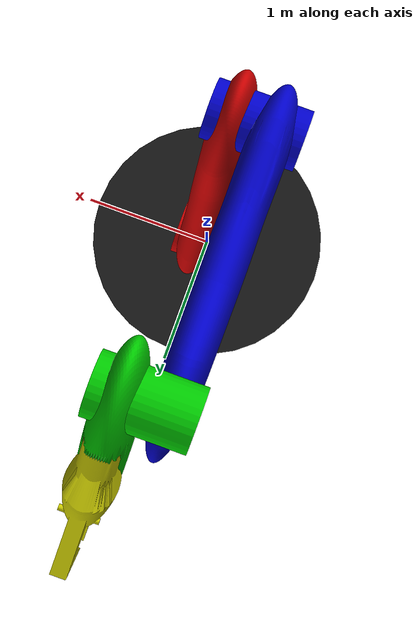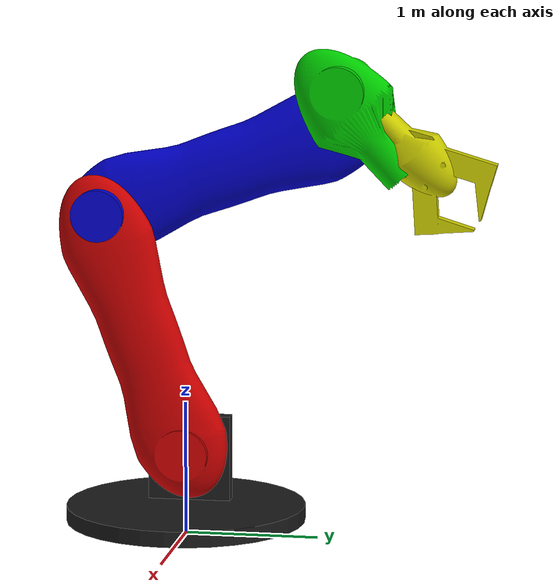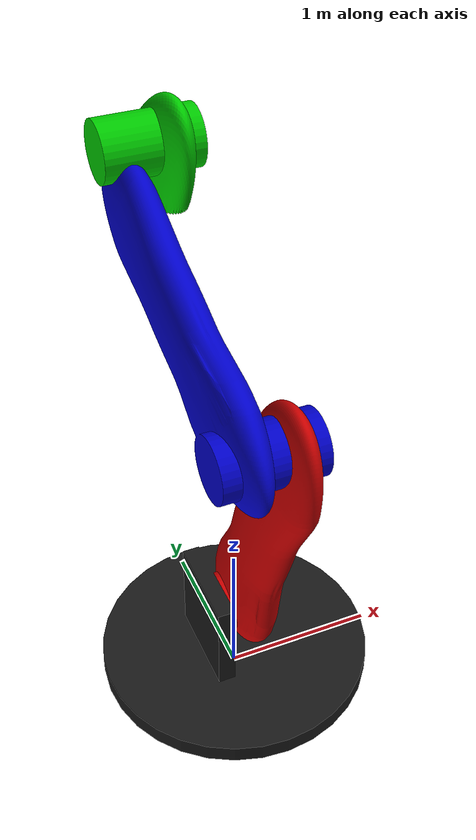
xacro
<?xml version="1.0"?>
<robot name="5dof_robotic_arm">

  <!-- A fixed frame to act as the root of the TF tree -->
  <link name="world"/>

  <!-- A fixed joint to attach the robot's base to the world frame -->
  <joint name="fixed_world_joint" type="fixed">
    <parent link="world"/>
    <child link="base_link"/>
    <origin xyz="0 0 0" rpy="0 0 0"/>
  </joint>

  <link name="base_link">
    <visual>
      <geometry>
        <mesh filename="package://robot_arm_description/meshes/base.stl"/>
      </geometry>
      <material name="black">
        <color rgba="0.1 0.1 0.1 1"/>
      </material>
    </visual>
    <collision>
      <geometry>
        <mesh filename="package://robot_arm_description/meshes/base.stl"/>
      </geometry>
    </collision>
    <inertial>
      <mass value="2.0"/>
      <inertia ixx="0.01" ixy="0" ixz="0" iyy="0.01" iyz="0" izz="0.01"/>
    </inertial>
  </link>

  <joint name="base_joint" type="revolute">
    <parent link="base_link"/>
    <child link="joint1_link"/>
    <axis xyz="0 0 1"/>
    <limit lower="-3.14" upper="3.14" effort="10" velocity="1.0"/>
    <origin xyz="0 0 0.025" rpy="0 0 0"/>
  </joint>

  <link name="joint1_link">
    <visual>
      <geometry>
        <mesh filename="package://robot_arm_description/meshes/joint1.stl"/>
      </geometry>
      <material name="red">
        <color rgba="0.8 0 0 1"/>
      </material>
    </visual>
    <collision>
      <geometry>
        <mesh filename="package://robot_arm_description/meshes/joint1.stl"/>
      </geometry>
    </collision>
    <inertial>
      <mass value="0.5"/>
      <inertia ixx="0.001" ixy="0" ixz="0" iyy="0.001" iyz="0" izz="0.001"/>
    </inertial>
  </link>

  <joint name="joint2" type="revolute">
    <parent link="joint1_link"/>
    <child link="joint2_link"/>
    <axis xyz="1 0 0"/>
    <limit lower="-1.57" upper="1.57" effort="10" velocity="1.0"/>
    <origin xyz="0 0 0.1" rpy="0 0 0"/>
  </joint>

  <link name="joint2_link">
    <visual>
      <geometry>
        <mesh filename="package://robot_arm_description/meshes/joint2.stl"/>
      </geometry>
      <material name="blue">
        <color rgba="0 0 0.8 1"/>
      </material>
    </visual>
    <collision>
      <geometry>
        <mesh filename="package://robot_arm_description/meshes/joint2.stl"/>
      </geometry>
    </collision>
    <inertial>
      <mass value="0.8"/>
      <inertia ixx="0.005" ixy="0" ixz="0" iyy="0.005" iyz="0" izz="0.005"/>
    </inertial>
  </link>

  <joint name="joint3" type="revolute">
    <parent link="joint2_link"/>
    <child link="joint3_link"/>
    <axis xyz="1 0 0"/>
    <limit lower="-1.57" upper="1.57" effort="10" velocity="1.0"/>
    <origin xyz="0 0 0.3" rpy="0 0 0"/>
  </joint>

  <link name="joint3_link">
    <visual>
      <geometry>
        <mesh filename="package://robot_arm_description/meshes/joint3.stl"/>
      </geometry>
      <material name="green">
        <color rgba="0 0.8 0 1"/>
      </material>
    </visual>
    <collision>
      <geometry>
        <mesh filename="package://robot_arm_description/meshes/joint3.stl"/>
      </geometry>
    </collision>
    <inertial>
      <mass value="0.6"/>
      <inertia ixx="0.003" ixy="0" ixz="0" iyy="0.003" iyz="0" izz="0.003"/>
    </inertial>
  </link>

  <joint name="end_effector_joint" type="revolute">
    <parent link="joint3_link"/>
    <child link="end_effector"/>
    <axis xyz="1 0 0"/>
    <limit lower="-3.14" upper="3.14" effort="5" velocity="0.5"/>
    <origin xyz="0 0 0.25" rpy="0 0 0"/>
  </joint>

  <link name="end_effector">
    <visual>
      <geometry>
        <mesh filename="package://robot_arm_description/meshes/end_effector.stl"/>
      </geometry>
      <material name="yellow">
        <color rgba="0.8 0.8 0 1"/>
      </material>
    </visual>
    <collision>
      <geometry>
        <mesh filename="package://robot_arm_description/meshes/end_effector.stl"/>
      </geometry>
    </collision>
    <inertial>
      <mass value="0.2"/>
      <inertia ixx="0.0001" ixy="0" ixz="0" iyy="0.0001" iyz="0" izz="0.0001"/>
    </inertial>
  </link>

</robot>
